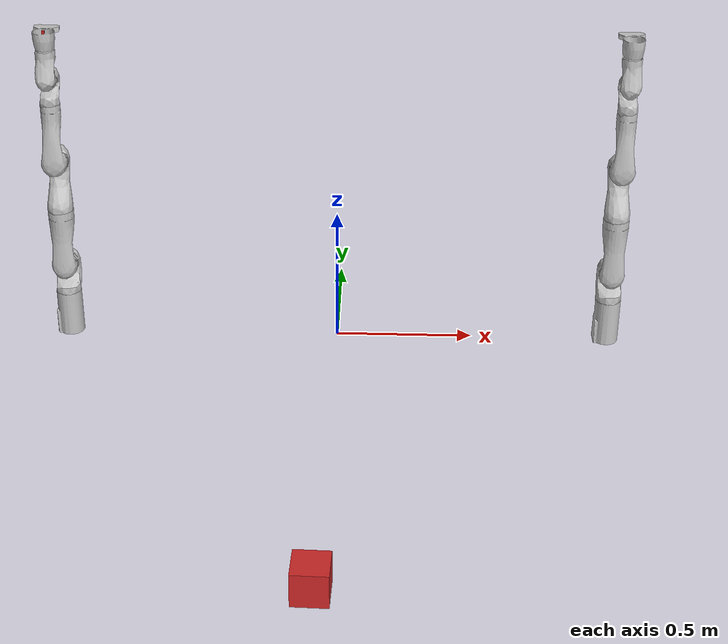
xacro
<?xml version="1.0" encoding="utf-8" ?>
<!-- |    This document was autogenerated by xacro from /home/taira/work/ws_kortex_ros/src/ros_kortex/kortex_description/multiple_robots/kortex_dual_robots.xacro | -->
<!-- |    EDITING THIS FILE BY HAND IS NOT RECOMMENDED                                 | -->
<robot name="dual_robot">
    <link name="world"/>
    <joint name="world_to_leftroot" type="fixed">
        <child link="leftbase_link"/>
        <parent link="world"/>
        <!-- Here you can change the origin of the left arm-->
        <origin rpy="0 0 0" xyz="-1 0 0"/>
    </joint>
    <joint name="world_to_rightroot" type="fixed">
        <child link="rightbase_link"/>
        <parent link="world"/>
        <!-- Here you can change the origin of the right arm -->
        <origin rpy="0 0 0" xyz="1 0 0"/>
    </joint>
    <!-- Run the macros -->
    <link name="leftbase_link">

        <inertial>
            <origin rpy="0 0 0" xyz="-0.000648 -0.000166 0.084487"/>
            <mass value="1.697"/>
            <inertia ixx="0.004622" ixy="9E-06" ixz="6E-05" iyy="0.004495" iyz="9E-06" izz="0.002079"/>
        </inertial>

        <visual>
            <origin rpy="0 0 0" xyz="0 0 0"/>
            <geometry>
                <mesh filename="package://kortex_description/arms/gen3/7dof/meshes/base_link.STL"/>
            </geometry>
            <material name="">
                <color rgba="0.75294 0.75294 0.75294 1"/>
            </material>
        </visual>
        <collision>
            <origin rpy="0 0 0" xyz="0 0 0"/>
            <geometry>
                <mesh filename="package://kortex_description/arms/gen3/7dof/meshes/base_link.STL"/>
            </geometry>
        </collision>
    </link>
    <link name="leftshoulder_link">

        <inertial>
            <origin rpy="0 0 0" xyz="-2.3E-05 -0.010364 -0.07336"/>
            <mass value="1.3773"/>
            <inertia ixx="0.00457" ixy="1E-06" ixz="2E-06" iyy="0.004831" iyz="0.000448" izz="0.001409"/>
        </inertial>

        <visual>
            <origin rpy="0 0 0" xyz="0 0 0"/>
            <geometry>
                <mesh filename="package://kortex_description/arms/gen3/7dof/meshes/shoulder_link.STL"/>
            </geometry>
            <material name="">
                <color rgba="0.75294 0.75294 0.75294 1"/>
            </material>
        </visual>
        <collision>
            <origin rpy="0 0 0" xyz="0 0 0"/>
            <geometry>
                <mesh filename="package://kortex_description/arms/gen3/7dof/meshes/shoulder_link.STL"/>
            </geometry>
        </collision>
    </link>
    <joint name="leftjoint_1" type="continuous">
        <origin rpy="3.1416 2.7629E-18 -4.9305E-36" xyz="0 0 0.15643"/>
        <parent link="leftbase_link"/>
        <child link="leftshoulder_link"/>
        <axis xyz="0 0 1"/>
        <limit effort="39" velocity="1.3963"/>
    </joint>
    <link name="lefthalf_arm_1_link">

        <inertial>
            <origin rpy="0 0 0" xyz="-4.4E-05 -0.09958 -0.013278"/>
            <mass value="1.1636"/>
            <inertia ixx="0.011088" ixy="5E-06" ixz="0" iyy="0.001072" iyz="-0.000691" izz="0.011255"/>
        </inertial>

        <visual>
            <origin rpy="0 0 0" xyz="0 0 0"/>
            <geometry>
                <mesh filename="package://kortex_description/arms/gen3/7dof/meshes/half_arm_1_link.STL"/>
            </geometry>
            <material name="">
                <color rgba="0.75294 0.75294 0.75294 1"/>
            </material>
        </visual>
        <collision>
            <origin rpy="0 0 0" xyz="0 0 0"/>
            <geometry>
                <mesh filename="package://kortex_description/arms/gen3/7dof/meshes/half_arm_1_link.STL"/>
            </geometry>
        </collision>
    </link>
    <joint name="leftjoint_2" type="revolute">
        <origin rpy="1.5708 2.1343E-17 -1.1102E-16" xyz="0 0.005375 -0.12838"/>
        <parent link="leftshoulder_link"/>
        <child link="lefthalf_arm_1_link"/>
        <axis xyz="0 0 1"/>
        <limit effort="39" lower="-2.41" upper="2.41" velocity="1.3963"/>
    </joint>
    <link name="lefthalf_arm_2_link">

        <inertial>
            <origin rpy="0 0 0" xyz="-4.4E-05 -0.006641 -0.117892"/>
            <mass value="1.1636"/>
            <inertia ixx="0.010932" ixy="0" ixz="-7E-06" iyy="0.011127" iyz="0.000606" izz="0.001043"/>
        </inertial>

        <visual>
            <origin rpy="0 0 0" xyz="0 0 0"/>
            <geometry>
                <mesh filename="package://kortex_description/arms/gen3/7dof/meshes/half_arm_2_link.STL"/>
            </geometry>
            <material name="">
                <color rgba="0.75294 0.75294 0.75294 1"/>
            </material>
        </visual>
        <collision>
            <origin rpy="0 0 0" xyz="0 0 0"/>
            <geometry>
                <mesh filename="package://kortex_description/arms/gen3/7dof/meshes/half_arm_2_link.STL"/>
            </geometry>
        </collision>
    </link>
    <joint name="leftjoint_3" type="continuous">
        <origin rpy="-1.5708 1.2326E-32 -2.9122E-16" xyz="0 -0.21038 -0.006375"/>
        <parent link="lefthalf_arm_1_link"/>
        <child link="lefthalf_arm_2_link"/>
        <axis xyz="0 0 1"/>
        <limit effort="39" velocity="1.3963"/>
    </joint>
    <link name="leftforearm_link">

        <inertial>
            <origin rpy="0 0 0" xyz="-1.8E-05 -0.075478 -0.015006"/>
            <mass value="0.9302"/>
            <inertia ixx="0.008147" ixy="-1E-06" ixz="0" iyy="0.000631" iyz="-0.0005" izz="0.008316"/>
        </inertial>

        <visual>
            <origin rpy="0 0 0" xyz="0 0 0"/>
            <geometry>
                <mesh filename="package://kortex_description/arms/gen3/7dof/meshes/forearm_link.STL"/>
            </geometry>
            <material name="">
                <color rgba="0.75294 0.75294 0.75294 1"/>
            </material>
        </visual>
        <collision>
            <origin rpy="0 0 0" xyz="0 0 0"/>
            <geometry>
                <mesh filename="package://kortex_description/arms/gen3/7dof/meshes/forearm_link.STL"/>
            </geometry>
        </collision>
    </link>
    <joint name="leftjoint_4" type="revolute">
        <origin rpy="1.5708 -6.6954E-17 -1.6653E-16" xyz="0 0.006375 -0.21038"/>
        <parent link="lefthalf_arm_2_link"/>
        <child link="leftforearm_link"/>
        <axis xyz="0 0 1"/>
        <limit effort="39" lower="-2.66" upper="2.66" velocity="1.3963"/>
    </joint>
    <link name="leftspherical_wrist_1_link">

        <inertial>
            <origin rpy="0 0 0" xyz="1E-06 -0.009432 -0.063883"/>
            <mass value="0.6781"/>
            <inertia ixx="0.001596" ixy="0" ixz="0" iyy="0.001607" iyz="0.000256" izz="0.000399"/>
        </inertial>

        <visual>
            <origin rpy="0 0 0" xyz="0 0 0"/>
            <geometry>
                <mesh filename="package://kortex_description/arms/gen3/7dof/meshes/spherical_wrist_1_link.STL"/>
            </geometry>
            <material name="">
                <color rgba="0.75294 0.75294 0.75294 1"/>
            </material>
        </visual>
        <collision>
            <origin rpy="0 0 0" xyz="0 0 0"/>
            <geometry>
                <mesh filename="package://kortex_description/arms/gen3/7dof/meshes/spherical_wrist_1_link.STL"/>
            </geometry>
        </collision>
    </link>
    <joint name="leftjoint_5" type="continuous">
        <origin rpy="-1.5708 2.2204E-16 -6.373E-17" xyz="0 -0.20843 -0.006375"/>
        <parent link="leftforearm_link"/>
        <child link="leftspherical_wrist_1_link"/>
        <axis xyz="0 0 1"/>
        <limit effort="9" velocity="1.2218"/>
    </joint>
    <link name="leftspherical_wrist_2_link">

        <inertial>
            <origin rpy="0 0 0" xyz="1E-06 -0.045483 -0.00965"/>
            <mass value="0.6781"/>
            <inertia ixx="0.001641" ixy="0" ixz="0" iyy="0.00041" iyz="-0.000278" izz="0.001641"/>
        </inertial>

        <visual>
            <origin rpy="0 0 0" xyz="0 0 0"/>
            <geometry>
                <mesh filename="package://kortex_description/arms/gen3/7dof/meshes/spherical_wrist_2_link.STL"/>
            </geometry>
            <material name="">
                <color rgba="0.75294 0.75294 0.75294 1"/>
            </material>
        </visual>
        <collision>
            <origin rpy="0 0 0" xyz="0 0 0"/>
            <geometry>
                <mesh filename="package://kortex_description/arms/gen3/7dof/meshes/spherical_wrist_2_link.STL"/>
            </geometry>
        </collision>
    </link>
    <joint name="leftjoint_6" type="revolute">
        <origin rpy="1.5708 9.2076E-28 -8.2157E-15" xyz="0 0.00017505 -0.10593"/>
        <parent link="leftspherical_wrist_1_link"/>
        <child link="leftspherical_wrist_2_link"/>
        <axis xyz="0 0 1"/>
        <limit effort="9" lower="-2.23" upper="2.23" velocity="1.2218"/>
    </joint>
    <link name="leftbracelet_link">

        <inertial>
            <origin rpy="0 0 0" xyz="0.000281 0.011402 -0.029798"/>
            <mass value="0.5"/>
            <inertia ixx="0.000587" ixy="3E-06" ixz="3E-06" iyy="0.000369" iyz="-0.000118" izz="0.000609"/>
        </inertial>

        <visual>
            <origin rpy="0 0 0" xyz="0 0 0"/>
            <geometry>
                <mesh filename="package://kortex_description/arms/gen3/7dof/meshes/bracelet_with_vision_link.STL"/>
            </geometry>
            <material name="">
                <color rgba="0.75294 0.75294 0.75294 1"/>
            </material>
        </visual>
        <collision>
            <origin rpy="0 0 0" xyz="0 0 0"/>
            <geometry>
                <mesh filename="package://kortex_description/arms/gen3/7dof/meshes/bracelet_with_vision_link.STL"/>
            </geometry>
        </collision>
    </link>
    <joint name="leftjoint_7" type="continuous">
        <origin rpy="-1.5708 -5.5511E-17 9.6396E-17" xyz="0 -0.10593 -0.00017505"/>
        <parent link="leftspherical_wrist_2_link"/>
        <child link="leftbracelet_link"/>
        <axis xyz="0 0 1"/>
        <limit effort="9" velocity="1.2218"/>
    </joint>
    <link name="leftend_effector_link"/>
    <joint name="leftend_effector" type="fixed">
        <origin rpy="3.14159265358979 1.09937075168372E-32 0" xyz="0 0 -0.0615250000000001"/>
        <parent link="leftbracelet_link"/>
        <child link="leftend_effector_link"/>
        <axis xyz="0 0 0"/>
    </joint>
    <!-- Run the macros -->
    <link name="rightbase_link">

        <inertial>
            <origin rpy="0 0 0" xyz="-0.000648 -0.000166 0.084487"/>
            <mass value="1.697"/>
            <inertia ixx="0.004622" ixy="9E-06" ixz="6E-05" iyy="0.004495" iyz="9E-06" izz="0.002079"/>
        </inertial>

        <visual>
            <origin rpy="0 0 0" xyz="0 0 0"/>
            <geometry>
                <mesh filename="package://kortex_description/arms/gen3/7dof/meshes/base_link.STL"/>
            </geometry>
            <material name="">
                <color rgba="0.75294 0.75294 0.75294 1"/>
            </material>
        </visual>
        <collision>
            <origin rpy="0 0 0" xyz="0 0 0"/>
            <geometry>
                <mesh filename="package://kortex_description/arms/gen3/7dof/meshes/base_link.STL"/>
            </geometry>
        </collision>
    </link>
    <link name="rightshoulder_link">

        <inertial>
            <origin rpy="0 0 0" xyz="-2.3E-05 -0.010364 -0.07336"/>
            <mass value="1.3773"/>
            <inertia ixx="0.00457" ixy="1E-06" ixz="2E-06" iyy="0.004831" iyz="0.000448" izz="0.001409"/>
        </inertial>

        <visual>
            <origin rpy="0 0 0" xyz="0 0 0"/>
            <geometry>
                <mesh filename="package://kortex_description/arms/gen3/7dof/meshes/shoulder_link.STL"/>
            </geometry>
            <material name="">
                <color rgba="0.75294 0.75294 0.75294 1"/>
            </material>
        </visual>
        <collision>
            <origin rpy="0 0 0" xyz="0 0 0"/>
            <geometry>
                <mesh filename="package://kortex_description/arms/gen3/7dof/meshes/shoulder_link.STL"/>
            </geometry>
        </collision>
    </link>
    <joint name="rightjoint_1" type="continuous">
        <origin rpy="3.1416 2.7629E-18 -4.9305E-36" xyz="0 0 0.15643"/>
        <parent link="rightbase_link"/>
        <child link="rightshoulder_link"/>
        <axis xyz="0 0 1"/>
        <limit effort="39" velocity="1.3963"/>
    </joint>
    <link name="righthalf_arm_1_link">

        <inertial>
            <origin rpy="0 0 0" xyz="-4.4E-05 -0.09958 -0.013278"/>
            <mass value="1.1636"/>
            <inertia ixx="0.011088" ixy="5E-06" ixz="0" iyy="0.001072" iyz="-0.000691" izz="0.011255"/>
        </inertial>

        <visual>
            <origin rpy="0 0 0" xyz="0 0 0"/>
            <geometry>
                <mesh filename="package://kortex_description/arms/gen3/7dof/meshes/half_arm_1_link.STL"/>
            </geometry>
            <material name="">
                <color rgba="0.75294 0.75294 0.75294 1"/>
            </material>
        </visual>
        <collision>
            <origin rpy="0 0 0" xyz="0 0 0"/>
            <geometry>
                <mesh filename="package://kortex_description/arms/gen3/7dof/meshes/half_arm_1_link.STL"/>
            </geometry>
        </collision>
    </link>
    <joint name="rightjoint_2" type="revolute">
        <origin rpy="1.5708 2.1343E-17 -1.1102E-16" xyz="0 0.005375 -0.12838"/>
        <parent link="rightshoulder_link"/>
        <child link="righthalf_arm_1_link"/>
        <axis xyz="0 0 1"/>
        <limit effort="39" lower="-2.41" upper="2.41" velocity="1.3963"/>
    </joint>
    <link name="righthalf_arm_2_link">

        <inertial>
            <origin rpy="0 0 0" xyz="-4.4E-05 -0.006641 -0.117892"/>
            <mass value="1.1636"/>
            <inertia ixx="0.010932" ixy="0" ixz="-7E-06" iyy="0.011127" iyz="0.000606" izz="0.001043"/>
        </inertial>

        <visual>
            <origin rpy="0 0 0" xyz="0 0 0"/>
            <geometry>
                <mesh filename="package://kortex_description/arms/gen3/7dof/meshes/half_arm_2_link.STL"/>
            </geometry>
            <material name="">
                <color rgba="0.75294 0.75294 0.75294 1"/>
            </material>
        </visual>
        <collision>
            <origin rpy="0 0 0" xyz="0 0 0"/>
            <geometry>
                <mesh filename="package://kortex_description/arms/gen3/7dof/meshes/half_arm_2_link.STL"/>
            </geometry>
        </collision>
    </link>
    <joint name="rightjoint_3" type="continuous">
        <origin rpy="-1.5708 1.2326E-32 -2.9122E-16" xyz="0 -0.21038 -0.006375"/>
        <parent link="righthalf_arm_1_link"/>
        <child link="righthalf_arm_2_link"/>
        <axis xyz="0 0 1"/>
        <limit effort="39" velocity="1.3963"/>
    </joint>
    <link name="rightforearm_link">

        <inertial>
            <origin rpy="0 0 0" xyz="-1.8E-05 -0.075478 -0.015006"/>
            <mass value="0.9302"/>
            <inertia ixx="0.008147" ixy="-1E-06" ixz="0" iyy="0.000631" iyz="-0.0005" izz="0.008316"/>
        </inertial>

        <visual>
            <origin rpy="0 0 0" xyz="0 0 0"/>
            <geometry>
                <mesh filename="package://kortex_description/arms/gen3/7dof/meshes/forearm_link.STL"/>
            </geometry>
            <material name="">
                <color rgba="0.75294 0.75294 0.75294 1"/>
            </material>
        </visual>
        <collision>
            <origin rpy="0 0 0" xyz="0 0 0"/>
            <geometry>
                <mesh filename="package://kortex_description/arms/gen3/7dof/meshes/forearm_link.STL"/>
            </geometry>
        </collision>
    </link>
    <joint name="rightjoint_4" type="revolute">
        <origin rpy="1.5708 -6.6954E-17 -1.6653E-16" xyz="0 0.006375 -0.21038"/>
        <parent link="righthalf_arm_2_link"/>
        <child link="rightforearm_link"/>
        <axis xyz="0 0 1"/>
        <limit effort="39" lower="-2.66" upper="2.66" velocity="1.3963"/>
    </joint>
    <link name="rightspherical_wrist_1_link">

        <inertial>
            <origin rpy="0 0 0" xyz="1E-06 -0.009432 -0.063883"/>
            <mass value="0.6781"/>
            <inertia ixx="0.001596" ixy="0" ixz="0" iyy="0.001607" iyz="0.000256" izz="0.000399"/>
        </inertial>

        <visual>
            <origin rpy="0 0 0" xyz="0 0 0"/>
            <geometry>
                <mesh filename="package://kortex_description/arms/gen3/7dof/meshes/spherical_wrist_1_link.STL"/>
            </geometry>
            <material name="">
                <color rgba="0.75294 0.75294 0.75294 1"/>
            </material>
        </visual>
        <collision>
            <origin rpy="0 0 0" xyz="0 0 0"/>
            <geometry>
                <mesh filename="package://kortex_description/arms/gen3/7dof/meshes/spherical_wrist_1_link.STL"/>
            </geometry>
        </collision>
    </link>
    <joint name="rightjoint_5" type="continuous">
        <origin rpy="-1.5708 2.2204E-16 -6.373E-17" xyz="0 -0.20843 -0.006375"/>
        <parent link="rightforearm_link"/>
        <child link="rightspherical_wrist_1_link"/>
        <axis xyz="0 0 1"/>
        <limit effort="9" velocity="1.2218"/>
    </joint>
    <link name="rightspherical_wrist_2_link">

        <inertial>
            <origin rpy="0 0 0" xyz="1E-06 -0.045483 -0.00965"/>
            <mass value="0.6781"/>
            <inertia ixx="0.001641" ixy="0" ixz="0" iyy="0.00041" iyz="-0.000278" izz="0.001641"/>
        </inertial>

        <visual>
            <origin rpy="0 0 0" xyz="0 0 0"/>
            <geometry>
                <mesh filename="package://kortex_description/arms/gen3/7dof/meshes/spherical_wrist_2_link.STL"/>
            </geometry>
            <material name="">
                <color rgba="0.75294 0.75294 0.75294 1"/>
            </material>
        </visual>
        <collision>
            <origin rpy="0 0 0" xyz="0 0 0"/>
            <geometry>
                <mesh filename="package://kortex_description/arms/gen3/7dof/meshes/spherical_wrist_2_link.STL"/>
            </geometry>
        </collision>
    </link>
    <joint name="rightjoint_6" type="revolute">
        <origin rpy="1.5708 9.2076E-28 -8.2157E-15" xyz="0 0.00017505 -0.10593"/>
        <parent link="rightspherical_wrist_1_link"/>
        <child link="rightspherical_wrist_2_link"/>
        <axis xyz="0 0 1"/>
        <limit effort="9" lower="-2.23" upper="2.23" velocity="1.2218"/>
    </joint>
    <link name="rightbracelet_link">

        <inertial>
            <origin rpy="0 0 0" xyz="0.000281 0.011402 -0.029798"/>
            <mass value="0.5"/>
            <inertia ixx="0.000587" ixy="3E-06" ixz="3E-06" iyy="0.000369" iyz="-0.000118" izz="0.000609"/>
        </inertial>

        <visual>
            <origin rpy="0 0 0" xyz="0 0 0"/>
            <geometry>
                <mesh filename="package://kortex_description/arms/gen3/7dof/meshes/bracelet_with_vision_link.STL"/>
            </geometry>
            <material name="">
                <color rgba="0.75294 0.75294 0.75294 1"/>
            </material>
        </visual>
        <collision>
            <origin rpy="0 0 0" xyz="0 0 0"/>
            <geometry>
                <mesh filename="package://kortex_description/arms/gen3/7dof/meshes/bracelet_with_vision_link.STL"/>
            </geometry>
        </collision>
    </link>
    <joint name="rightjoint_7" type="continuous">
        <origin rpy="-1.5708 -5.5511E-17 9.6396E-17" xyz="0 -0.10593 -0.00017505"/>
        <parent link="rightspherical_wrist_2_link"/>
        <child link="rightbracelet_link"/>
        <axis xyz="0 0 1"/>
        <limit effort="9" velocity="1.2218"/>
    </joint>
    <link name="rightend_effector_link"/>
    <joint name="rightend_effector" type="fixed">
        <origin rpy="3.14159265358979 1.09937075168372E-32 0" xyz="0 0 -0.0615250000000001"/>
        <parent link="rightbracelet_link"/>
        <child link="rightend_effector_link"/>
        <axis xyz="0 0 0"/>
    </joint>

    <link name="camera">
        <visual>
            <geometry>
                <box size="0.01 0.01 0.01"/>
            </geometry>
            <origin rpy="0 0 0" xyz="0 0 0"/>
            <material name="red"/>
        </visual>
        <inertial>
            <mass value="0.1"/>
            <inertia ixx="0.03" ixy="0.0" ixz="0.0" iyy="0.03" iyz="0.0" izz="0.03"/>
        </inertial>
    </link>

    <joint name="fixed_camera" type="fixed">
        <origin xyz="0 0 0" rpy="0 -1.57 0"/>
        <parent link="leftend_effector_link"/>
        <child link="camera"/>
    </joint>

    <link name="camera1">
        <visual>
            <geometry>
                <box size="0.1 0.1 0.1"/>
            </geometry>
            <origin rpy="0 0 0" xyz="0 0 0"/>
            <material name="red"/>
        </visual>
        <inertial>
            <mass value="0.1"/>
            <inertia ixx="0.03" ixy="0.0" ixz="0.0" iyy="0.03" iyz="0.0" izz="0.03"/>
        </inertial>
    </link>

    <joint name="fixed_camera1" type="fixed">
        <origin xyz="0.01 -2.0 0.5" rpy="0 0 1.54"/>
        <parent link="world"/>
        <child link="camera1"/>
    </joint>
    <!-- This joint was added by Kinova -->

    <transmission name="trans_leftjoint_1">
        <type>transmission_interface/SimpleTransmission</type>
        <joint name="leftjoint_1">
            <hardwareInterface>hardware_interface/EffortJointInterface</hardwareInterface>
        </joint>
        <actuator name="leftjoint_1_motor">
            <hardwareInterface>hardware_interface/EffortJointInterface</hardwareInterface>
            <mechanicalReduction>1</mechanicalReduction>
        </actuator>
    </transmission>
    <transmission name="trans_leftjoint_2">
        <type>transmission_interface/SimpleTransmission</type>
        <joint name="leftjoint_2">
            <hardwareInterface>hardware_interface/EffortJointInterface</hardwareInterface>
        </joint>
        <actuator name="leftjoint_2_motor">
            <hardwareInterface>hardware_interface/EffortJointInterface</hardwareInterface>
            <mechanicalReduction>1</mechanicalReduction>
        </actuator>
    </transmission>
    <transmission name="trans_leftjoint_3">
        <type>transmission_interface/SimpleTransmission</type>
        <joint name="leftjoint_3">
            <hardwareInterface>hardware_interface/EffortJointInterface</hardwareInterface>
        </joint>
        <actuator name="leftjoint_3_motor">
            <hardwareInterface>hardware_interface/EffortJointInterface</hardwareInterface>
            <mechanicalReduction>1</mechanicalReduction>
        </actuator>
    </transmission>
    <transmission name="trans_leftjoint_4">
        <type>transmission_interface/SimpleTransmission</type>
        <joint name="leftjoint_4">
            <hardwareInterface>hardware_interface/EffortJointInterface</hardwareInterface>
        </joint>
        <actuator name="leftjoint_4_motor">
            <hardwareInterface>hardware_interface/EffortJointInterface</hardwareInterface>
            <mechanicalReduction>1</mechanicalReduction>
        </actuator>
    </transmission>
    <transmission name="trans_leftjoint_5">
        <type>transmission_interface/SimpleTransmission</type>
        <joint name="leftjoint_5">
            <hardwareInterface>hardware_interface/EffortJointInterface</hardwareInterface>
        </joint>
        <actuator name="leftjoint_5_motor">
            <hardwareInterface>hardware_interface/EffortJointInterface</hardwareInterface>
            <mechanicalReduction>1</mechanicalReduction>
        </actuator>
    </transmission>
    <transmission name="trans_leftjoint_6">
        <type>transmission_interface/SimpleTransmission</type>
        <joint name="leftjoint_6">
            <hardwareInterface>hardware_interface/EffortJointInterface</hardwareInterface>
        </joint>
        <actuator name="leftjoint_6_motor">
            <hardwareInterface>hardware_interface/EffortJointInterface</hardwareInterface>
            <mechanicalReduction>1</mechanicalReduction>
        </actuator>
    </transmission>
    <transmission name="trans_leftjoint_7">
        <type>transmission_interface/SimpleTransmission</type>
        <joint name="leftjoint_7">
            <hardwareInterface>hardware_interface/EffortJointInterface</hardwareInterface>
        </joint>
        <actuator name="leftjoint_7_motor">
            <hardwareInterface>hardware_interface/EffortJointInterface</hardwareInterface>
            <mechanicalReduction>1</mechanicalReduction>
        </actuator>
    </transmission>
    <transmission name="trans_rightjoint_1">
        <type>transmission_interface/SimpleTransmission</type>
        <joint name="rightjoint_1">
            <hardwareInterface>hardware_interface/EffortJointInterface</hardwareInterface>
        </joint>
        <actuator name="rightjoint_1_motor">
            <hardwareInterface>hardware_interface/EffortJointInterface</hardwareInterface>
            <mechanicalReduction>1</mechanicalReduction>
        </actuator>
    </transmission>
    <transmission name="trans_rightjoint_2">
        <type>transmission_interface/SimpleTransmission</type>
        <joint name="rightjoint_2">
            <hardwareInterface>hardware_interface/EffortJointInterface</hardwareInterface>
        </joint>
        <actuator name="rightjoint_2_motor">
            <hardwareInterface>hardware_interface/EffortJointInterface</hardwareInterface>
            <mechanicalReduction>1</mechanicalReduction>
        </actuator>
    </transmission>
    <transmission name="trans_rightjoint_3">
        <type>transmission_interface/SimpleTransmission</type>
        <joint name="rightjoint_3">
            <hardwareInterface>hardware_interface/EffortJointInterface</hardwareInterface>
        </joint>
        <actuator name="rightjoint_3_motor">
            <hardwareInterface>hardware_interface/EffortJointInterface</hardwareInterface>
            <mechanicalReduction>1</mechanicalReduction>
        </actuator>
    </transmission>
    <transmission name="trans_rightjoint_4">
        <type>transmission_interface/SimpleTransmission</type>
        <joint name="rightjoint_4">
            <hardwareInterface>hardware_interface/EffortJointInterface</hardwareInterface>
        </joint>
        <actuator name="rightjoint_4_motor">
            <hardwareInterface>hardware_interface/EffortJointInterface</hardwareInterface>
            <mechanicalReduction>1</mechanicalReduction>
        </actuator>
    </transmission>
    <transmission name="trans_rightjoint_5">
        <type>transmission_interface/SimpleTransmission</type>
        <joint name="rightjoint_5">
            <hardwareInterface>hardware_interface/EffortJointInterface</hardwareInterface>
        </joint>
        <actuator name="rightjoint_5_motor">
            <hardwareInterface>hardware_interface/EffortJointInterface</hardwareInterface>
            <mechanicalReduction>1</mechanicalReduction>
        </actuator>
    </transmission>
    <transmission name="trans_rightjoint_6">
        <type>transmission_interface/SimpleTransmission</type>
        <joint name="rightjoint_6">
            <hardwareInterface>hardware_interface/EffortJointInterface</hardwareInterface>
        </joint>
        <actuator name="rightjoint_6_motor">
            <hardwareInterface>hardware_interface/EffortJointInterface</hardwareInterface>
            <mechanicalReduction>1</mechanicalReduction>
        </actuator>
    </transmission>
    <transmission name="trans_rightjoint_7">
        <type>transmission_interface/SimpleTransmission</type>
        <joint name="rightjoint_7">
            <hardwareInterface>hardware_interface/EffortJointInterface</hardwareInterface>
        </joint>
        <actuator name="rightjoint_7_motor">
            <hardwareInterface>hardware_interface/EffortJointInterface</hardwareInterface>
            <mechanicalReduction>1</mechanicalReduction>
        </actuator>
    </transmission>

    <gazebo>
        <plugin name="gazebo_ros_control" filename="libgazebo_ros_control.so">
            <robotNamespace>/</robotNamespace>
        </plugin>
    </gazebo>
    <gazebo reference="camera">
        <material>Gazebo/Red</material>
        <sensor type="camera" name="camera">
            <update_rate>30.0</update_rate>
            <camera name="head">
                <horizontal_fov>1.3962634</horizontal_fov>
                <image>
                    <width>800</width>
                    <height>800</height>
                    <format>R8G8B8</format>
                </image>
                <clip>
                    <near>0.02</near>
                    <far>300</far>
                </clip>
                <noise>
                    <type>gaussian</type>
                    <mean>0.0</mean>
                    <stddev>0.007</stddev>
                </noise>
            </camera>
            <plugin name="camera_controller" filename="libgazebo_ros_camera.so">
                <alwaysOn>true</alwaysOn>
                <updateRate>0.0</updateRate>
                <cameraName>/cam/camera</cameraName>
                <imageTopicName>image_raw</imageTopicName>
                <cameraInfoTopicName>camera_info</cameraInfoTopicName>
                <frameName>camera</frameName>
                <hackBaseline>0.07</hackBaseline>
                <distortionK1>0.0</distortionK1>
                <distortionK2>0.0</distortionK2>
                <distortionK3>0.0</distortionK3>
                <distortionT1>0.0</distortionT1>
                <distortionT2>0.0</distortionT2>
            </plugin>
        </sensor>
    </gazebo>
    <gazebo reference="camera1">
        <material>Gazebo/Red</material>
        <sensor type="camera" name="camera">
            <update_rate>30.0</update_rate>
            <camera name="side">
                <horizontal_fov>1.3962634</horizontal_fov>
                <image>
                    <width>800</width>
                    <height>800</height>
                    <format>R8G8B8</format>
                </image>
                <clip>
                    <near>0.02</near>
                    <far>300</far>
                </clip>
                <noise>
                    <type>gaussian</type>
                    <mean>0.0</mean>
                    <stddev>0.007</stddev>
                </noise>
            </camera>
            <plugin name="camera_controller" filename="libgazebo_ros_camera.so">
                <alwaysOn>true</alwaysOn>
                <updateRate>0.0</updateRate>
                <cameraName>/cam/camera1</cameraName>
                <imageTopicName>image_raw1</imageTopicName>
                <cameraInfoTopicName>camera_info</cameraInfoTopicName>
                <frameName>camera1</frameName>
                <hackBaseline>0.07</hackBaseline>
                <distortionK1>0.0</distortionK1>
                <distortionK2>0.0</distortionK2>
                <distortionK3>0.0</distortionK3>
                <distortionT1>0.0</distortionT1>
                <distortionT2>0.0</distortionT2>
            </plugin>
        </sensor>
    </gazebo>
</robot>
